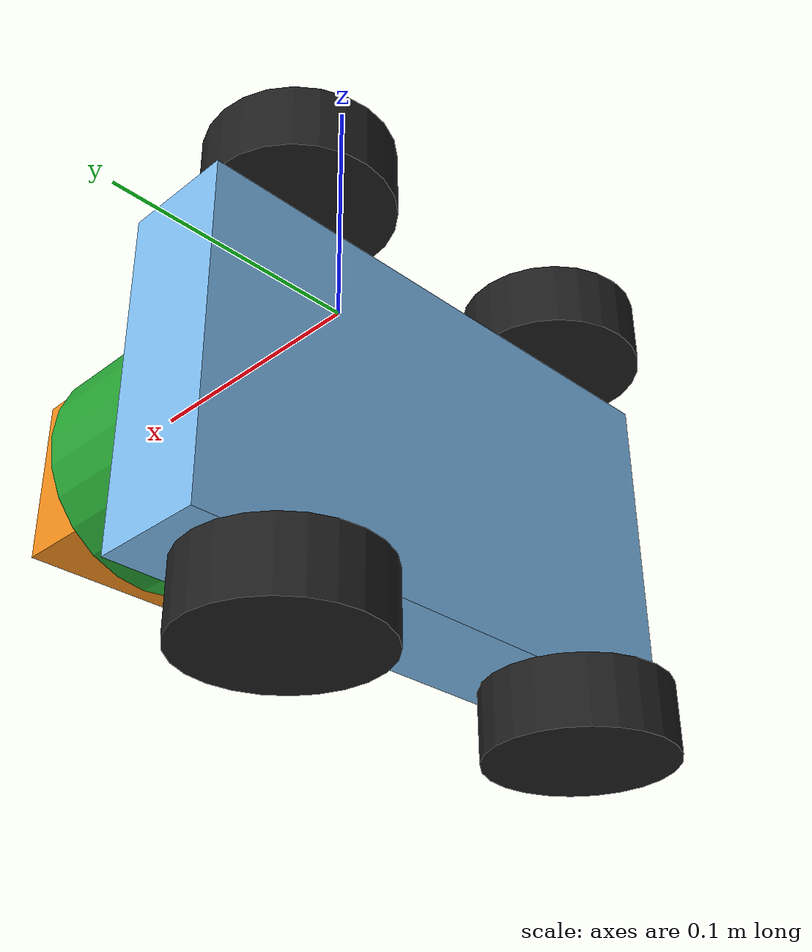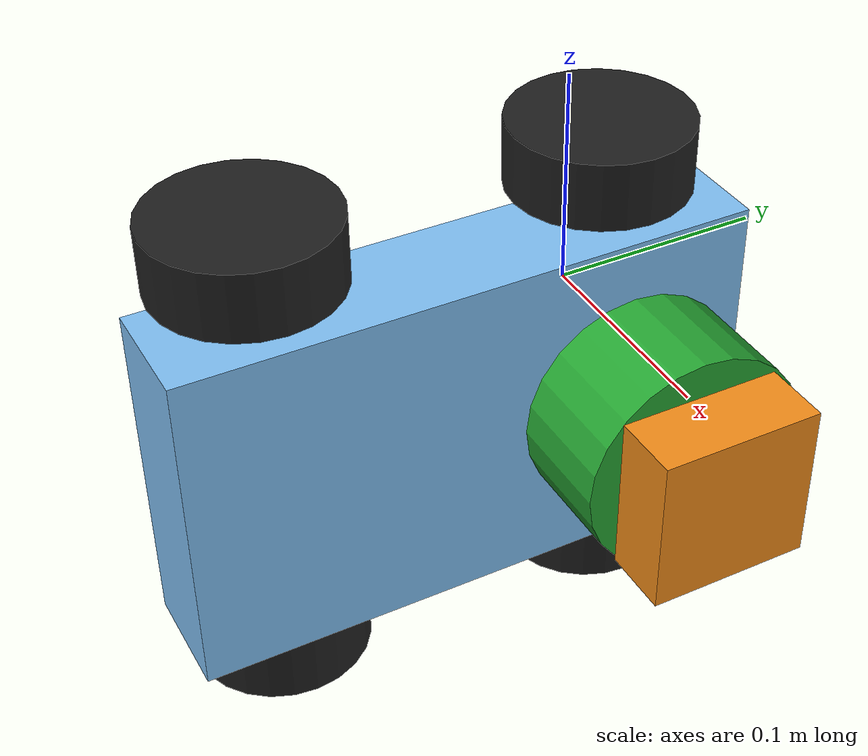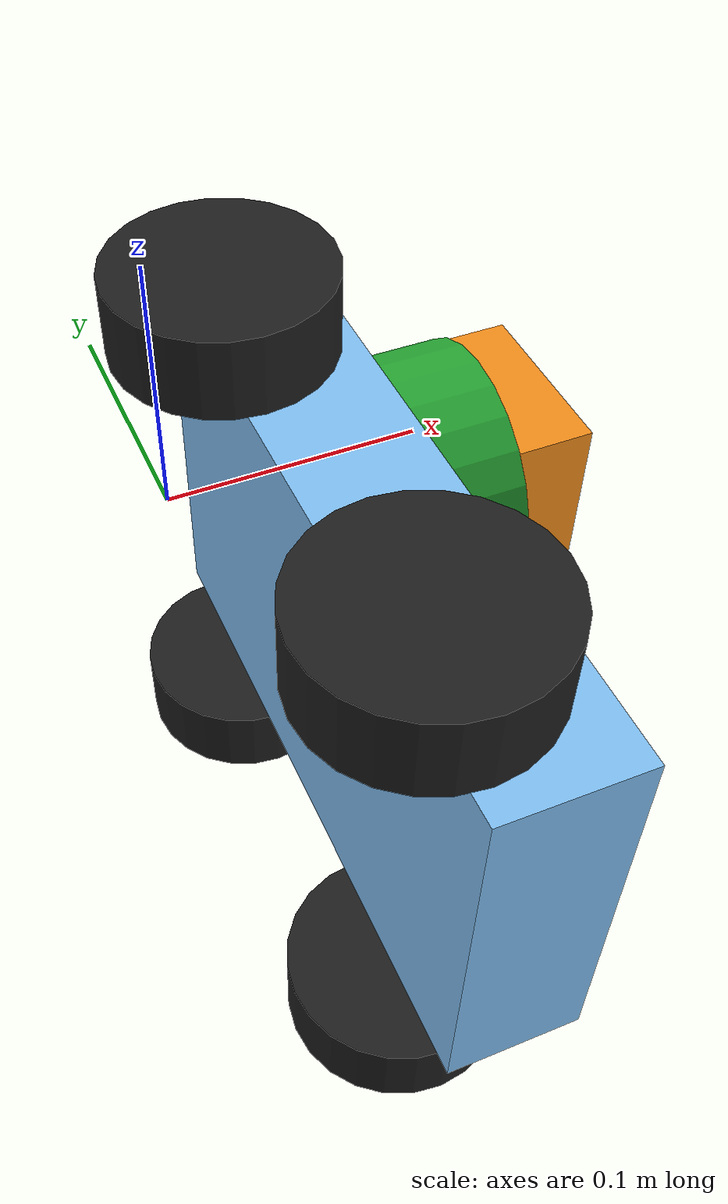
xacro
<?xml version="1.0" ?>
<robot name="bfl_8" xmlns:xacro="http://ros.org/wiki/xacro">
  <xacro:include filename="$(find dharmendra_model)/gazebo/bfl_8/bfl_8.gazebo"/>

  <link name= "base_footprint" />

  <joint name="base_joint" type="fixed">
    <parent link="base_footprint"/>
    <child link="chessy_link"/>
    <origin xyz="0.04061 -0.0922  -0.0155" rpy="-1.5708 0 -1.5708"/>
  </joint>

  <link name="chessy_link">
    <inertial>
      <mass value="1"/>
      <origin xyz="0 0 0" rpy="0 0 0"/>
      <inertia ixx="0.166667" ixy="0" ixz="0" iyy="0.166667" iyz="0" izz="0.166667"/>
    </inertial>
    <collision>
      <origin xyz="-0.01153 -0.0009   0.005" rpy="0 0 0"/>
      <geometry>
        <box size="0.25 0.15 0.05"/>
      </geometry>
    </collision>
    <visual>
      <origin xyz="-0.01153 -0.0009   0.005" rpy="0 0 0"/>
      <geometry>
        <box size="0.25 0.15 0.05"/>
      </geometry>
    </visual>
  </link>

  <joint name="camera_joint" type="fixed">
    <parent link="chessy_link"/>
    <child link="camera_link"/>
    <origin xyz="-0.08272  0.00202  0.09503" rpy="0 0 0"/>
    <axis xyz="1 0 0"/>
    <limit lower="0" upper="0" effort="0" velocity="0"/>
  </joint>

  <link name="camera_link">
    <inertial>
      <mass value="1"/>
      <origin xyz="0 0 0" rpy="0 0 0"/>
      <inertia ixx="0.166667" ixy="0" ixz="0" iyy="0.166667" iyz="0" izz="0.166667"/>
    </inertial>
    <collision>
      <origin xyz="0 0 0" rpy="0 0 0"/>
      <geometry>
        <box size="0.07071 0.07071 0.03"/>
      </geometry>
    </collision>
    <visual>
      <origin xyz="0 0 0" rpy="0 0 0"/>
      <geometry>
        <box size="0.07071 0.07071 0.03"/>
      </geometry>
    </visual>
  </link>

  <joint name="back_left_joint" type="revolute">
    <parent link="chessy_link"/>
    <child link="left_back_link"/>
    <origin xyz="0.06435 -0.09418 -0.015" rpy="1.5708 0     0"/>
    <axis xyz="0 0 1"/>
    <limit lower="-1.79769e+308" upper="1.79769e+308" effort="-1.0" velocity="-1.0"/>
  </joint>

  <link name="left_back_link">
    <inertial>
      <mass value="1"/>
      <origin xyz="0 0 0" rpy="0 0 0"/>
      <inertia ixx="0.145833" ixy="0" ixz="0" iyy="0.145833" iyz="0" izz="0.125"/>
    </inertial>
    <collision>
      <origin xyz="0 0 0" rpy="0 0 0"/>
      <geometry>
        <cylinder radius="0.04" length="0.03"/>
      </geometry>
    </collision>
    <visual>
      <origin xyz="0 0 0" rpy="0 0 0"/>
      <geometry>
        <cylinder radius="0.04" length="0.03"/>
      </geometry>
    </visual>
  </link>

  <joint name="back_right_joint" type="revolute">
    <parent link="chessy_link"/>
    <child link="right_back_link"/>
    <origin xyz="0.06435  0.09414 -0.015" rpy="1.5708 0     0"/>
    <axis xyz="0 0 1"/>
    <limit lower="-1.79769e+308" upper="1.79769e+308" effort="-1.0" velocity="-1.0"/>
  </joint>

  <link name="right_back_link">
    <inertial>
      <mass value="1"/>
      <origin xyz="0 0 0" rpy="0 0 0"/>
      <inertia ixx="0.145833" ixy="0" ixz="0" iyy="0.145833" iyz="0" izz="0.125"/>
    </inertial>
    <collision>
      <origin xyz="0 0 0" rpy="0 0 0"/>
      <geometry>
        <cylinder radius="0.04" length="0.03"/>
      </geometry>
    </collision>
    <visual>
      <origin xyz="0 0 0" rpy="0 0 0"/>
      <geometry>
        <cylinder radius="0.04" length="0.03"/>
      </geometry>
    </visual>
  </link>

  <joint name="front_right_joint" type="revolute">
    <parent link="chessy_link"/>
    <child link="right_front_link"/>
    <origin xyz="-0.09187  0.09414 -0.015" rpy="1.5708 0     0"/>
    <axis xyz="0 0 1"/>
    <limit lower="-1.79769e+308" upper="1.79769e+308" effort="-1.0" velocity="-1.0"/>
  </joint>

  <link name="right_front_link">
    <inertial>
      <mass value="1"/>
      <origin xyz="0 0 0" rpy="0 0 0"/>
      <inertia ixx="0.145833" ixy="0" ixz="0" iyy="0.145833" iyz="0" izz="0.125"/>
    </inertial>
    <collision>
      <origin xyz="0 0 0" rpy="0 0 0"/>
      <geometry>
        <cylinder radius="0.04" length="0.03"/>
      </geometry>
    </collision>
    <visual>
      <origin xyz="0 0 0" rpy="0 0 0"/>
      <geometry>
        <cylinder radius="0.04" length="0.03"/>
      </geometry>
    </visual>
  </link>

  <joint name="front_left_joint" type="revolute">
    <parent link="chessy_link"/>
    <child link="left_front_link"/>
    <origin xyz="-0.09187 -0.09418 -0.015" rpy="1.5708 0     0"/>
    <axis xyz="0 0 1"/>
    <limit lower="-1.79769e+308" upper="1.79769e+308" effort="-1.0" velocity="-1.0"/>
  </joint>

  <link name="left_front_link">
    <inertial>
      <mass value="1"/>
      <origin xyz="0 0 0" rpy="0 0 0"/>
      <inertia ixx="0.145833" ixy="0" ixz="0" iyy="0.145833" iyz="0" izz="0.125"/>
    </inertial>
    <collision>
      <origin xyz="0 0 0" rpy="0 0 0"/>
      <geometry>
        <cylinder radius="0.04" length="0.03"/>
      </geometry>
    </collision>
    <visual>
      <origin xyz="0 0 0" rpy="0 0 0"/>
      <geometry>
        <cylinder radius="0.04" length="0.03"/>
      </geometry>
    </visual>
  </link>

  <joint name="lidar_joint" type="fixed">
    <parent link="chessy_link"/>
    <child link="lidar_link"/>
    <origin xyz="-0.08374  0.00097  0.055" rpy="0 0 0"/>
    <axis xyz="0 0 0"/>
    <limit lower="0" upper="0" effort="0" velocity="0"/>
  </joint>

  <link name="lidar_link">
    <inertial>
      <mass value="1"/>
      <origin xyz="0 0 0" rpy="0 0 0"/>
      <inertia ixx="0.145833" ixy="0" ixz="0" iyy="0.145833" iyz="0" izz="0.125"/>
    </inertial>
    <collision>
      <origin xyz="0 0 0" rpy="0 0 0"/>
      <geometry>
        <cylinder radius="0.05" length="0.05"/>
      </geometry>
    </collision>
    <visual>
      <origin xyz="0 0 0" rpy="0 0 0"/>
      <geometry>
        <cylinder radius="0.05" length="0.05"/>
      </geometry>
    </visual>
  </link>

</robot>
